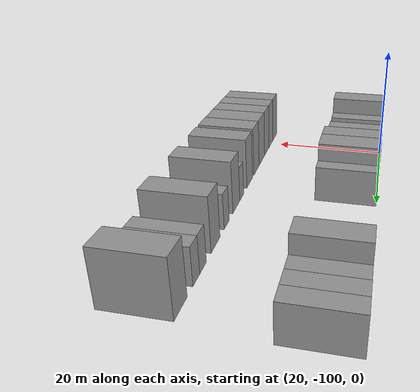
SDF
<sdf version="1.6">
 <world name="default">
  <model name="building_27">
   <static>1</static>
   <pose>25.0000 -106.9631 0 0.000000 0.000000 0.000000</pose>
   <link name="link">
    <pose>0 0 4.50 0 0 0</pose>
    <collision name="collision"><geometry><box><size>10.0000 4.4164 9.0000</size></box></geometry></collision>
    <visual name="visual">
     <cast_shadows>0</cast_shadows>
     <geometry><box><size>10.0000 4.4164 9.0000</size></box></geometry>
     <material>
      <script>
       <uri>model://grey_wall/materials/scripts</uri>
       <uri>model://grey_wall/materials/textures</uri>
       <name>vrc/grey_wall</name>
      </script>
     </material>
    </visual>
   </link>
  </model>
  <model name="building_28">
   <static>1</static>
   <pose>25.0000 -103.2580 0 0.000000 0.000000 0.000000</pose>
   <link name="link">
    <pose>0 0 3.00 0 0 0</pose>
    <collision name="collision"><geometry><box><size>10.0000 2.9938 6.0000</size></box></geometry></collision>
    <visual name="visual">
     <cast_shadows>0</cast_shadows>
     <geometry><box><size>10.0000 2.9938 6.0000</size></box></geometry>
     <material>
      <script>
       <uri>model://grey_wall/materials/scripts</uri>
       <uri>model://grey_wall/materials/textures</uri>
       <name>vrc/grey_wall</name>
      </script>
     </material>
    </visual>
   </link>
  </model>
  <model name="building_29">
   <static>1</static>
   <pose>25.0000 -98.3528 0 0.000000 0.000000 0.000000</pose>
   <link name="link">
    <pose>0 0 3.00 0 0 0</pose>
    <collision name="collision"><geometry><box><size>10.0000 2.8166 6.0000</size></box></geometry></collision>
    <visual name="visual">
     <cast_shadows>0</cast_shadows>
     <geometry><box><size>10.0000 2.8166 6.0000</size></box></geometry>
     <material>
      <script>
       <uri>model://grey_wall/materials/scripts</uri>
       <uri>model://grey_wall/materials/textures</uri>
       <name>vrc/grey_wall</name>
      </script>
     </material>
    </visual>
   </link>
  </model>
  <model name="building_30">
   <static>1</static>
   <pose>25.0000 -95.7208 0 0.000000 0.000000 0.000000</pose>
   <link name="link">
    <pose>0 0 3.00 0 0 0</pose>
    <collision name="collision"><geometry><box><size>10.0000 2.4473 6.0000</size></box></geometry></collision>
    <visual name="visual">
     <cast_shadows>0</cast_shadows>
     <geometry><box><size>10.0000 2.4473 6.0000</size></box></geometry>
     <material>
      <script>
       <uri>model://grey_wall/materials/scripts</uri>
       <uri>model://grey_wall/materials/textures</uri>
       <name>vrc/grey_wall</name>
      </script>
     </material>
    </visual>
   </link>
  </model>
  <model name="building_31">
   <static>1</static>
   <pose>25.0000 -91.0076 0 0.000000 0.000000 0.000000</pose>
   <link name="link">
    <pose>0 0 3.00 0 0 0</pose>
    <collision name="collision"><geometry><box><size>10.0000 2.9791 6.0000</size></box></geometry></collision>
    <visual name="visual">
     <cast_shadows>0</cast_shadows>
     <geometry><box><size>10.0000 2.9791 6.0000</size></box></geometry>
     <material>
      <script>
       <uri>model://grey_wall/materials/scripts</uri>
       <uri>model://grey_wall/materials/textures</uri>
       <name>vrc/grey_wall</name>
      </script>
     </material>
    </visual>
   </link>
  </model>
  <model name="building_32">
   <static>1</static>
   <pose>25.0000 -87.6984 0 0.000000 0.000000 0.000000</pose>
   <link name="link">
    <pose>0 0 4.50 0 0 0</pose>
    <collision name="collision"><geometry><box><size>10.0000 3.6393 9.0000</size></box></geometry></collision>
    <visual name="visual">
     <cast_shadows>0</cast_shadows>
     <geometry><box><size>10.0000 3.6393 9.0000</size></box></geometry>
     <material>
      <script>
       <uri>model://grey_wall/materials/scripts</uri>
       <uri>model://grey_wall/materials/textures</uri>
       <name>vrc/grey_wall</name>
      </script>
     </material>
    </visual>
   </link>
  </model>
  <model name="building_33">
   <static>1</static>
   <pose>25.0000 -83.6790 0 0.000000 0.000000 0.000000</pose>
   <link name="link">
    <pose>0 0 4.50 0 0 0</pose>
    <collision name="collision"><geometry><box><size>10.0000 4.3994 9.0000</size></box></geometry></collision>
    <visual name="visual">
     <cast_shadows>0</cast_shadows>
     <geometry><box><size>10.0000 4.3994 9.0000</size></box></geometry>
     <material>
      <script>
       <uri>model://grey_wall/materials/scripts</uri>
       <uri>model://grey_wall/materials/textures</uri>
       <name>vrc/grey_wall</name>
      </script>
     </material>
    </visual>
   </link>
  </model>
  <model name="building_34">
   <static>1</static>
   <pose>25.0000 -80.1914 0 0.000000 0.000000 0.000000</pose>
   <link name="link">
    <pose>0 0 3.00 0 0 0</pose>
    <collision name="collision"><geometry><box><size>10.0000 2.5758 6.0000</size></box></geometry></collision>
    <visual name="visual">
     <cast_shadows>0</cast_shadows>
     <geometry><box><size>10.0000 2.5758 6.0000</size></box></geometry>
     <material>
      <script>
       <uri>model://grey_wall/materials/scripts</uri>
       <uri>model://grey_wall/materials/textures</uri>
       <name>vrc/grey_wall</name>
      </script>
     </material>
    </visual>
   </link>
  </model>
  <model name="building_35">
   <static>1</static>
   <pose>25.0000 -57.1080 0 0.000000 0.000000 0.000000</pose>
   <link name="link">
    <pose>0 0 4.50 0 0 0</pose>
    <collision name="collision"><geometry><box><size>10.0000 3.8637 9.0000</size></box></geometry></collision>
    <visual name="visual">
     <cast_shadows>0</cast_shadows>
     <geometry><box><size>10.0000 3.8637 9.0000</size></box></geometry>
     <material>
      <script>
       <uri>model://grey_wall/materials/scripts</uri>
       <uri>model://grey_wall/materials/textures</uri>
       <name>vrc/grey_wall</name>
      </script>
     </material>
    </visual>
   </link>
  </model>
  <model name="building_36">
   <static>1</static>
   <pose>25.0000 -53.8150 0 0.000000 0.000000 0.000000</pose>
   <link name="link">
    <pose>0 0 3.00 0 0 0</pose>
    <collision name="collision"><geometry><box><size>10.0000 2.7222 6.0000</size></box></geometry></collision>
    <visual name="visual">
     <cast_shadows>0</cast_shadows>
     <geometry><box><size>10.0000 2.7222 6.0000</size></box></geometry>
     <material>
      <script>
       <uri>model://grey_wall/materials/scripts</uri>
       <uri>model://grey_wall/materials/textures</uri>
       <name>vrc/grey_wall</name>
      </script>
     </material>
    </visual>
   </link>
  </model>
  <model name="building_37">
   <static>1</static>
   <pose>25.0000 -51.0576 0 0.000000 0.000000 0.000000</pose>
   <link name="link">
    <pose>0 0 3.00 0 0 0</pose>
    <collision name="collision"><geometry><box><size>10.0000 2.7926 6.0000</size></box></geometry></collision>
    <visual name="visual">
     <cast_shadows>0</cast_shadows>
     <geometry><box><size>10.0000 2.7926 6.0000</size></box></geometry>
     <material>
      <script>
       <uri>model://grey_wall/materials/scripts</uri>
       <uri>model://grey_wall/materials/textures</uri>
       <name>vrc/grey_wall</name>
      </script>
     </material>
    </visual>
   </link>
  </model>
  <model name="building_38">
   <static>1</static>
   <pose>25.0000 -48.2400 0 0.000000 0.000000 0.000000</pose>
   <link name="link">
    <pose>0 0 3.00 0 0 0</pose>
    <collision name="collision"><geometry><box><size>10.0000 2.8425 6.0000</size></box></geometry></collision>
    <visual name="visual">
     <cast_shadows>0</cast_shadows>
     <geometry><box><size>10.0000 2.8425 6.0000</size></box></geometry>
     <material>
      <script>
       <uri>model://grey_wall/materials/scripts</uri>
       <uri>model://grey_wall/materials/textures</uri>
       <name>vrc/grey_wall</name>
      </script>
     </material>
    </visual>
   </link>
  </model>
  <model name="building_120">
   <static>1</static>
   <pose>47.0000 -103.4654 0 0.000000 0.000000 0.000000</pose>
   <link name="link">
    <pose>0 0 4.50 0 0 0</pose>
    <collision name="collision"><geometry><box><size>10.0000 4.0400 9.0000</size></box></geometry></collision>
    <visual name="visual">
     <cast_shadows>0</cast_shadows>
     <geometry><box><size>10.0000 4.0400 9.0000</size></box></geometry>
     <material>
      <script>
       <uri>model://grey_wall/materials/scripts</uri>
       <uri>model://grey_wall/materials/textures</uri>
       <name>vrc/grey_wall</name>
      </script>
     </material>
    </visual>
   </link>
  </model>
  <model name="building_121">
   <static>1</static>
   <pose>47.0000 -99.5900 0 0.000000 0.000000 0.000000</pose>
   <link name="link">
    <pose>0 0 4.50 0 0 0</pose>
    <collision name="collision"><geometry><box><size>10.0000 3.7107 9.0000</size></box></geometry></collision>
    <visual name="visual">
     <cast_shadows>0</cast_shadows>
     <geometry><box><size>10.0000 3.7107 9.0000</size></box></geometry>
     <material>
      <script>
       <uri>model://grey_wall/materials/scripts</uri>
       <uri>model://grey_wall/materials/textures</uri>
       <name>vrc/grey_wall</name>
      </script>
     </material>
    </visual>
   </link>
  </model>
  <model name="building_122">
   <static>1</static>
   <pose>47.0000 -95.8220 0 0.000000 0.000000 0.000000</pose>
   <link name="link">
    <pose>0 0 4.50 0 0 0</pose>
    <collision name="collision"><geometry><box><size>10.0000 3.8255 9.0000</size></box></geometry></collision>
    <visual name="visual">
     <cast_shadows>0</cast_shadows>
     <geometry><box><size>10.0000 3.8255 9.0000</size></box></geometry>
     <material>
      <script>
       <uri>model://grey_wall/materials/scripts</uri>
       <uri>model://grey_wall/materials/textures</uri>
       <name>vrc/grey_wall</name>
      </script>
     </material>
    </visual>
   </link>
  </model>
  <model name="building_123">
   <static>1</static>
   <pose>47.0000 -91.6618 0 0.000000 0.000000 0.000000</pose>
   <link name="link">
    <pose>0 0 4.50 0 0 0</pose>
    <collision name="collision"><geometry><box><size>10.0000 4.4948 9.0000</size></box></geometry></collision>
    <visual name="visual">
     <cast_shadows>0</cast_shadows>
     <geometry><box><size>10.0000 4.4948 9.0000</size></box></geometry>
     <material>
      <script>
       <uri>model://grey_wall/materials/scripts</uri>
       <uri>model://grey_wall/materials/textures</uri>
       <name>vrc/grey_wall</name>
      </script>
     </material>
    </visual>
   </link>
  </model>
  <model name="building_124">
   <static>1</static>
   <pose>47.0000 -87.4228 0 0.000000 0.000000 0.000000</pose>
   <link name="link">
    <pose>0 0 4.50 0 0 0</pose>
    <collision name="collision"><geometry><box><size>10.0000 3.9832 9.0000</size></box></geometry></collision>
    <visual name="visual">
     <cast_shadows>0</cast_shadows>
     <geometry><box><size>10.0000 3.9832 9.0000</size></box></geometry>
     <material>
      <script>
       <uri>model://grey_wall/materials/scripts</uri>
       <uri>model://grey_wall/materials/textures</uri>
       <name>vrc/grey_wall</name>
      </script>
     </material>
    </visual>
   </link>
  </model>
  <model name="building_125">
   <static>1</static>
   <pose>47.0000 -82.4617 0 0.000000 0.000000 0.000000</pose>
   <link name="link">
    <pose>0 0 4.50 0 0 0</pose>
    <collision name="collision"><geometry><box><size>10.0000 3.9391 9.0000</size></box></geometry></collision>
    <visual name="visual">
     <cast_shadows>0</cast_shadows>
     <geometry><box><size>10.0000 3.9391 9.0000</size></box></geometry>
     <material>
      <script>
       <uri>model://grey_wall/materials/scripts</uri>
       <uri>model://grey_wall/materials/textures</uri>
       <name>vrc/grey_wall</name>
      </script>
     </material>
    </visual>
   </link>
  </model>
  <model name="building_126">
   <static>1</static>
   <pose>47.0000 -77.2570 0 0.000000 0.000000 0.000000</pose>
   <link name="link">
    <pose>0 0 3.00 0 0 0</pose>
    <collision name="collision"><geometry><box><size>10.0000 2.4702 6.0000</size></box></geometry></collision>
    <visual name="visual">
     <cast_shadows>0</cast_shadows>
     <geometry><box><size>10.0000 2.4702 6.0000</size></box></geometry>
     <material>
      <script>
       <uri>model://grey_wall/materials/scripts</uri>
       <uri>model://grey_wall/materials/textures</uri>
       <name>vrc/grey_wall</name>
      </script>
     </material>
    </visual>
   </link>
  </model>
  <model name="building_127">
   <static>1</static>
   <pose>47.0000 -74.0216 0 0.000000 0.000000 0.000000</pose>
   <link name="link">
    <pose>0 0 4.50 0 0 0</pose>
    <collision name="collision"><geometry><box><size>10.0000 4.0007 9.0000</size></box></geometry></collision>
    <visual name="visual">
     <cast_shadows>0</cast_shadows>
     <geometry><box><size>10.0000 4.0007 9.0000</size></box></geometry>
     <material>
      <script>
       <uri>model://grey_wall/materials/scripts</uri>
       <uri>model://grey_wall/materials/textures</uri>
       <name>vrc/grey_wall</name>
      </script>
     </material>
    </visual>
   </link>
  </model>
  <model name="building_128">
   <static>1</static>
   <pose>47.0000 -68.7204 0 0.000000 0.000000 0.000000</pose>
   <link name="link">
    <pose>0 0 3.00 0 0 0</pose>
    <collision name="collision"><geometry><box><size>10.0000 2.6017 6.0000</size></box></geometry></collision>
    <visual name="visual">
     <cast_shadows>0</cast_shadows>
     <geometry><box><size>10.0000 2.6017 6.0000</size></box></geometry>
     <material>
      <script>
       <uri>model://grey_wall/materials/scripts</uri>
       <uri>model://grey_wall/materials/textures</uri>
       <name>vrc/grey_wall</name>
      </script>
     </material>
    </visual>
   </link>
  </model>
  <model name="building_129">
   <static>1</static>
   <pose>47.0000 -63.3860 0 0.000000 0.000000 0.000000</pose>
   <link name="link">
    <pose>0 0 4.50 0 0 0</pose>
    <collision name="collision"><geometry><box><size>10.0000 4.0671 9.0000</size></box></geometry></collision>
    <visual name="visual">
     <cast_shadows>0</cast_shadows>
     <geometry><box><size>10.0000 4.0671 9.0000</size></box></geometry>
     <material>
      <script>
       <uri>model://grey_wall/materials/scripts</uri>
       <uri>model://grey_wall/materials/textures</uri>
       <name>vrc/grey_wall</name>
      </script>
     </material>
    </visual>
   </link>
  </model>
  <model name="building_130">
   <static>1</static>
   <pose>47.0000 -58.0487 0 0.000000 0.000000 0.000000</pose>
   <link name="link">
    <pose>0 0 3.00 0 0 0</pose>
    <collision name="collision"><geometry><box><size>10.0000 2.6074 6.0000</size></box></geometry></collision>
    <visual name="visual">
     <cast_shadows>0</cast_shadows>
     <geometry><box><size>10.0000 2.6074 6.0000</size></box></geometry>
     <material>
      <script>
       <uri>model://grey_wall/materials/scripts</uri>
       <uri>model://grey_wall/materials/textures</uri>
       <name>vrc/grey_wall</name>
      </script>
     </material>
    </visual>
   </link>
  </model>
  <model name="building_131">
   <static>1</static>
   <pose>47.0000 -55.4666 0 0.000000 0.000000 0.000000</pose>
   <link name="link">
    <pose>0 0 3.00 0 0 0</pose>
    <collision name="collision"><geometry><box><size>10.0000 2.5568 6.0000</size></box></geometry></collision>
    <visual name="visual">
     <cast_shadows>0</cast_shadows>
     <geometry><box><size>10.0000 2.5568 6.0000</size></box></geometry>
     <material>
      <script>
       <uri>model://grey_wall/materials/scripts</uri>
       <uri>model://grey_wall/materials/textures</uri>
       <name>vrc/grey_wall</name>
      </script>
     </material>
    </visual>
   </link>
  </model>
  <model name="building_132">
   <static>1</static>
   <pose>47.0000 -50.0542 0 0.000000 0.000000 0.000000</pose>
   <link name="link">
    <pose>0 0 4.50 0 0 0</pose>
    <collision name="collision"><geometry><box><size>10.0000 4.2680 9.0000</size></box></geometry></collision>
    <visual name="visual">
     <cast_shadows>0</cast_shadows>
     <geometry><box><size>10.0000 4.2680 9.0000</size></box></geometry>
     <material>
      <script>
       <uri>model://grey_wall/materials/scripts</uri>
       <uri>model://grey_wall/materials/textures</uri>
       <name>vrc/grey_wall</name>
      </script>
     </material>
    </visual>
   </link>
  </model>
 </world>
</sdf>
